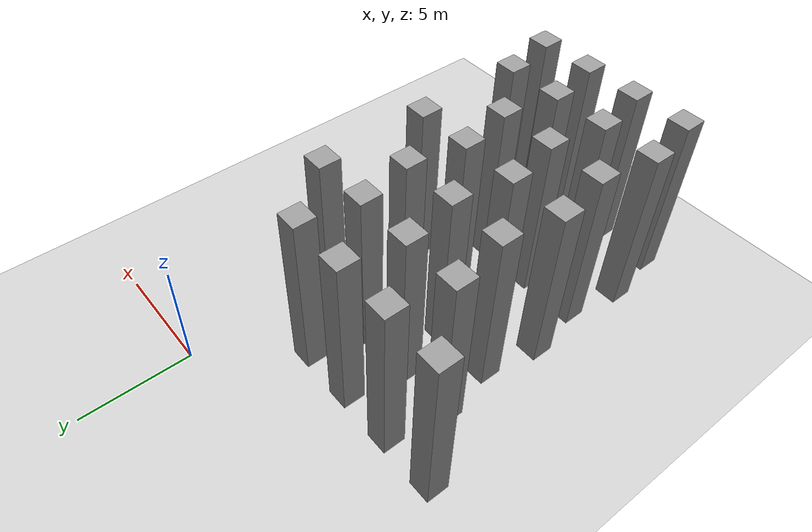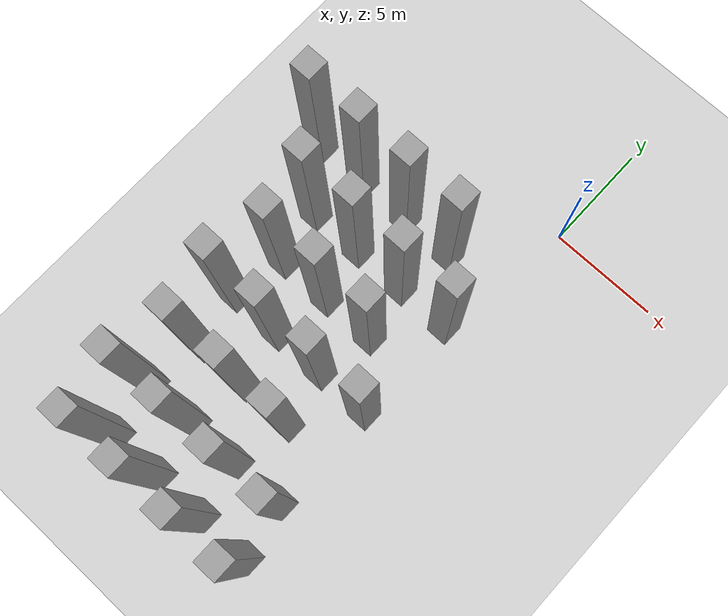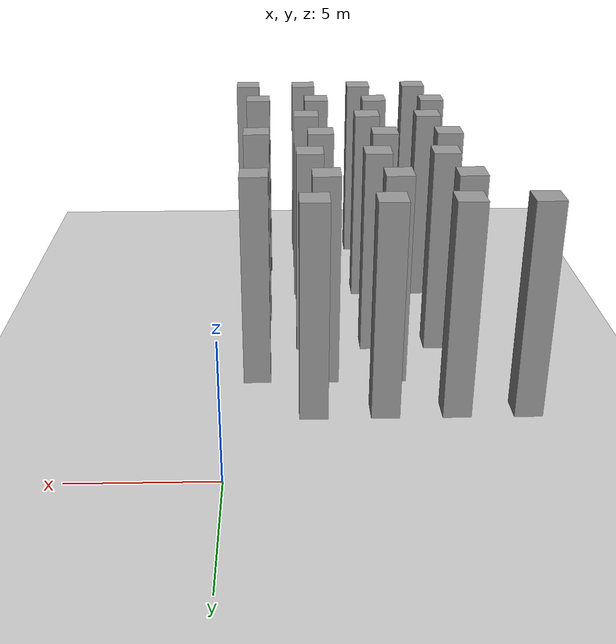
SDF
<sdf version="1.7">
 <world name="default">
  <model name="ground_plane">
   <static>1</static>
   <link name="link">
    <collision name="collision">
     <geometry><plane><normal>0 0 1</normal><size>100 100</size></plane></geometry>
     <surface>
      <contact><collide_bitmask>65535</collide_bitmask></contact>
      <friction><ode><mu>100</mu><mu2>50</mu2></ode></friction>
     </surface>
    </collision>
    <visual name="visual">
     <cast_shadows>0</cast_shadows>
     <geometry><plane><normal>0 0 1</normal><size>100 100</size></plane></geometry>
     <material>
      <script><uri>file://media/materials/scripts/gazebo.material</uri><name>Gazebo/Grey</name></script>
     </material>
    </visual>
   </link>
  </model>
  <model name="unit_box_static5">
   <link name="link">
    <inertial>
     <mass>1</mass>
     <inertia>
      <ixx>0.166667</ixx>
      <ixy>0</ixy>
      <ixz>0</ixz>
      <iyy>0.166667</iyy>
      <iyz>0</iyz>
      <izz>0.166667</izz>
     </inertia>
    </inertial>
    <visual name="visual">
     <geometry><box><size>1 1 8</size></box></geometry>
     <material>
      <script><name>Gazebo/Grey</name><uri>file://media/materials/scripts/gazebo.material</uri></script>
      <shader type="pixel"/>
     </material>
    </visual>
    <collision name="collision">
     <geometry><box><size>1 1 8</size></box></geometry>
     <surface>
      <friction>
       <ode><mu>1</mu><mu2>1</mu2><fdir1>0 0 0</fdir1><slip1>0</slip1><slip2>0</slip2></ode>
       <torsional>
        <coefficient>1</coefficient>
        <patch_radius>0</patch_radius>
        <surface_radius>0</surface_radius>
        <use_patch_radius>1</use_patch_radius>
        <ode><slip>0</slip></ode>
       </torsional>
      </friction>
      <bounce><restitution_coefficient>0</restitution_coefficient><threshold>1e+06</threshold></bounce>
      <contact>
       <collide_without_contact>0</collide_without_contact>
       <collide_without_contact_bitmask>1</collide_without_contact_bitmask>
       <collide_bitmask>1</collide_bitmask>
       <ode>
        <soft_cfm>0</soft_cfm>
        <soft_erp>0.2</soft_erp>
        <kp>1e+13</kp>
        <kd>1</kd>
        <max_vel>0.01</max_vel>
        <min_depth>0</min_depth>
       </ode>
       <bullet>
        <split_impulse>1</split_impulse>
        <split_impulse_penetration_threshold>-0.01</split_impulse_penetration_threshold>
        <soft_cfm>0</soft_cfm>
        <soft_erp>0.2</soft_erp>
        <kp>1e+13</kp>
        <kd>1</kd>
       </bullet>
      </contact>
     </surface>
    </collision>
   </link>
   <static>1</static>
   <pose>-8 -19 4 0 -0 0</pose>
  </model>
  <model name="unit_box_static6">
   <link name="link">
    <inertial>
     <mass>1</mass>
     <inertia>
      <ixx>0.166667</ixx>
      <ixy>0</ixy>
      <ixz>0</ixz>
      <iyy>0.166667</iyy>
      <iyz>0</iyz>
      <izz>0.166667</izz>
     </inertia>
    </inertial>
    <visual name="visual">
     <geometry><box><size>1 1 8</size></box></geometry>
     <material>
      <script><name>Gazebo/Grey</name><uri>file://media/materials/scripts/gazebo.material</uri></script>
      <shader type="pixel"/>
     </material>
    </visual>
    <collision name="collision">
     <geometry><box><size>1 1 8</size></box></geometry>
     <surface>
      <friction>
       <ode><mu>1</mu><mu2>1</mu2><fdir1>0 0 0</fdir1><slip1>0</slip1><slip2>0</slip2></ode>
       <torsional>
        <coefficient>1</coefficient>
        <patch_radius>0</patch_radius>
        <surface_radius>0</surface_radius>
        <use_patch_radius>1</use_patch_radius>
        <ode><slip>0</slip></ode>
       </torsional>
      </friction>
      <bounce><restitution_coefficient>0</restitution_coefficient><threshold>1e+06</threshold></bounce>
      <contact>
       <collide_without_contact>0</collide_without_contact>
       <collide_without_contact_bitmask>1</collide_without_contact_bitmask>
       <collide_bitmask>1</collide_bitmask>
       <ode>
        <soft_cfm>0</soft_cfm>
        <soft_erp>0.2</soft_erp>
        <kp>1e+13</kp>
        <kd>1</kd>
        <max_vel>0.01</max_vel>
        <min_depth>0</min_depth>
       </ode>
       <bullet>
        <split_impulse>1</split_impulse>
        <split_impulse_penetration_threshold>-0.01</split_impulse_penetration_threshold>
        <soft_cfm>0</soft_cfm>
        <soft_erp>0.2</soft_erp>
        <kp>1e+13</kp>
        <kd>1</kd>
       </bullet>
      </contact>
     </surface>
    </collision>
   </link>
   <static>1</static>
   <pose>-5.5 -19 4 0 -0 0</pose>
  </model>
  <model name="unit_box_static7">
   <link name="link">
    <inertial>
     <mass>1</mass>
     <inertia>
      <ixx>0.166667</ixx>
      <ixy>0</ixy>
      <ixz>0</ixz>
      <iyy>0.166667</iyy>
      <iyz>0</iyz>
      <izz>0.166667</izz>
     </inertia>
    </inertial>
    <visual name="visual">
     <geometry><box><size>1 1 8</size></box></geometry>
     <material>
      <script><name>Gazebo/Grey</name><uri>file://media/materials/scripts/gazebo.material</uri></script>
      <shader type="pixel"/>
     </material>
    </visual>
    <collision name="collision">
     <geometry><box><size>1 1 8</size></box></geometry>
     <surface>
      <friction>
       <ode><mu>1</mu><mu2>1</mu2><fdir1>0 0 0</fdir1><slip1>0</slip1><slip2>0</slip2></ode>
       <torsional>
        <coefficient>1</coefficient>
        <patch_radius>0</patch_radius>
        <surface_radius>0</surface_radius>
        <use_patch_radius>1</use_patch_radius>
        <ode><slip>0</slip></ode>
       </torsional>
      </friction>
      <bounce><restitution_coefficient>0</restitution_coefficient><threshold>1e+06</threshold></bounce>
      <contact>
       <collide_without_contact>0</collide_without_contact>
       <collide_without_contact_bitmask>1</collide_without_contact_bitmask>
       <collide_bitmask>1</collide_bitmask>
       <ode>
        <soft_cfm>0</soft_cfm>
        <soft_erp>0.2</soft_erp>
        <kp>1e+13</kp>
        <kd>1</kd>
        <max_vel>0.01</max_vel>
        <min_depth>0</min_depth>
       </ode>
       <bullet>
        <split_impulse>1</split_impulse>
        <split_impulse_penetration_threshold>-0.01</split_impulse_penetration_threshold>
        <soft_cfm>0</soft_cfm>
        <soft_erp>0.2</soft_erp>
        <kp>1e+13</kp>
        <kd>1</kd>
       </bullet>
      </contact>
     </surface>
    </collision>
   </link>
   <static>1</static>
   <pose>-3 -19 4 0 -0 0</pose>
  </model>
  <model name="unit_box_static8">
   <link name="link">
    <inertial>
     <mass>1</mass>
     <inertia>
      <ixx>0.166667</ixx>
      <ixy>0</ixy>
      <ixz>0</ixz>
      <iyy>0.166667</iyy>
      <iyz>0</iyz>
      <izz>0.166667</izz>
     </inertia>
    </inertial>
    <visual name="visual">
     <geometry><box><size>1 1 8</size></box></geometry>
     <material>
      <script><name>Gazebo/Grey</name><uri>file://media/materials/scripts/gazebo.material</uri></script>
      <shader type="pixel"/>
     </material>
    </visual>
    <collision name="collision">
     <geometry><box><size>1 1 8</size></box></geometry>
     <surface>
      <friction>
       <ode><mu>1</mu><mu2>1</mu2><fdir1>0 0 0</fdir1><slip1>0</slip1><slip2>0</slip2></ode>
       <torsional>
        <coefficient>1</coefficient>
        <patch_radius>0</patch_radius>
        <surface_radius>0</surface_radius>
        <use_patch_radius>1</use_patch_radius>
        <ode><slip>0</slip></ode>
       </torsional>
      </friction>
      <bounce><restitution_coefficient>0</restitution_coefficient><threshold>1e+06</threshold></bounce>
      <contact>
       <collide_without_contact>0</collide_without_contact>
       <collide_without_contact_bitmask>1</collide_without_contact_bitmask>
       <collide_bitmask>1</collide_bitmask>
       <ode>
        <soft_cfm>0</soft_cfm>
        <soft_erp>0.2</soft_erp>
        <kp>1e+13</kp>
        <kd>1</kd>
        <max_vel>0.01</max_vel>
        <min_depth>0</min_depth>
       </ode>
       <bullet>
        <split_impulse>1</split_impulse>
        <split_impulse_penetration_threshold>-0.01</split_impulse_penetration_threshold>
        <soft_cfm>0</soft_cfm>
        <soft_erp>0.2</soft_erp>
        <kp>1e+13</kp>
        <kd>1</kd>
       </bullet>
      </contact>
     </surface>
    </collision>
   </link>
   <static>1</static>
   <pose>-0.5 -19 4 0 -0 0</pose>
  </model>
  <model name="unit_box_static19">
   <link name="link">
    <inertial>
     <mass>1</mass>
     <inertia>
      <ixx>0.166667</ixx>
      <ixy>0</ixy>
      <ixz>0</ixz>
      <iyy>0.166667</iyy>
      <iyz>0</iyz>
      <izz>0.166667</izz>
     </inertia>
    </inertial>
    <visual name="visual">
     <geometry><box><size>1 1 8</size></box></geometry>
     <material>
      <script><name>Gazebo/Grey</name><uri>file://media/materials/scripts/gazebo.material</uri></script>
      <shader type="pixel"/>
     </material>
    </visual>
    <collision name="collision">
     <geometry><box><size>1 1 8</size></box></geometry>
     <surface>
      <friction>
       <ode><mu>1</mu><mu2>1</mu2><fdir1>0 0 0</fdir1><slip1>0</slip1><slip2>0</slip2></ode>
       <torsional>
        <coefficient>1</coefficient>
        <patch_radius>0</patch_radius>
        <surface_radius>0</surface_radius>
        <use_patch_radius>1</use_patch_radius>
        <ode><slip>0</slip></ode>
       </torsional>
      </friction>
      <bounce><restitution_coefficient>0</restitution_coefficient><threshold>1e+06</threshold></bounce>
      <contact>
       <collide_without_contact>0</collide_without_contact>
       <collide_without_contact_bitmask>1</collide_without_contact_bitmask>
       <collide_bitmask>1</collide_bitmask>
       <ode>
        <soft_cfm>0</soft_cfm>
        <soft_erp>0.2</soft_erp>
        <kp>1e+13</kp>
        <kd>1</kd>
        <max_vel>0.01</max_vel>
        <min_depth>0</min_depth>
       </ode>
       <bullet>
        <split_impulse>1</split_impulse>
        <split_impulse_penetration_threshold>-0.01</split_impulse_penetration_threshold>
        <soft_cfm>0</soft_cfm>
        <soft_erp>0.2</soft_erp>
        <kp>1e+13</kp>
        <kd>1</kd>
       </bullet>
      </contact>
     </surface>
    </collision>
   </link>
   <static>1</static>
   <pose>-8.5 -16.5 4 0 -0 0</pose>
  </model>
  <model name="unit_box_static20">
   <link name="link">
    <inertial>
     <mass>1</mass>
     <inertia>
      <ixx>0.166667</ixx>
      <ixy>0</ixy>
      <ixz>0</ixz>
      <iyy>0.166667</iyy>
      <iyz>0</iyz>
      <izz>0.166667</izz>
     </inertia>
    </inertial>
    <visual name="visual">
     <geometry><box><size>1 1 8</size></box></geometry>
     <material>
      <script><name>Gazebo/Grey</name><uri>file://media/materials/scripts/gazebo.material</uri></script>
      <shader type="pixel"/>
     </material>
    </visual>
    <collision name="collision">
     <geometry><box><size>1 1 8</size></box></geometry>
     <surface>
      <friction>
       <ode><mu>1</mu><mu2>1</mu2><fdir1>0 0 0</fdir1><slip1>0</slip1><slip2>0</slip2></ode>
       <torsional>
        <coefficient>1</coefficient>
        <patch_radius>0</patch_radius>
        <surface_radius>0</surface_radius>
        <use_patch_radius>1</use_patch_radius>
        <ode><slip>0</slip></ode>
       </torsional>
      </friction>
      <bounce><restitution_coefficient>0</restitution_coefficient><threshold>1e+06</threshold></bounce>
      <contact>
       <collide_without_contact>0</collide_without_contact>
       <collide_without_contact_bitmask>1</collide_without_contact_bitmask>
       <collide_bitmask>1</collide_bitmask>
       <ode>
        <soft_cfm>0</soft_cfm>
        <soft_erp>0.2</soft_erp>
        <kp>1e+13</kp>
        <kd>1</kd>
        <max_vel>0.01</max_vel>
        <min_depth>0</min_depth>
       </ode>
       <bullet>
        <split_impulse>1</split_impulse>
        <split_impulse_penetration_threshold>-0.01</split_impulse_penetration_threshold>
        <soft_cfm>0</soft_cfm>
        <soft_erp>0.2</soft_erp>
        <kp>1e+13</kp>
        <kd>1</kd>
       </bullet>
      </contact>
     </surface>
    </collision>
   </link>
   <static>1</static>
   <pose>-6 -16.5 4 0 -0 0</pose>
  </model>
  <model name="unit_box_static21">
   <link name="link">
    <inertial>
     <mass>1</mass>
     <inertia>
      <ixx>0.166667</ixx>
      <ixy>0</ixy>
      <ixz>0</ixz>
      <iyy>0.166667</iyy>
      <iyz>0</iyz>
      <izz>0.166667</izz>
     </inertia>
    </inertial>
    <visual name="visual">
     <geometry><box><size>1 1 8</size></box></geometry>
     <material>
      <script><name>Gazebo/Grey</name><uri>file://media/materials/scripts/gazebo.material</uri></script>
      <shader type="pixel"/>
     </material>
    </visual>
    <collision name="collision">
     <geometry><box><size>1 1 8</size></box></geometry>
     <surface>
      <friction>
       <ode><mu>1</mu><mu2>1</mu2><fdir1>0 0 0</fdir1><slip1>0</slip1><slip2>0</slip2></ode>
       <torsional>
        <coefficient>1</coefficient>
        <patch_radius>0</patch_radius>
        <surface_radius>0</surface_radius>
        <use_patch_radius>1</use_patch_radius>
        <ode><slip>0</slip></ode>
       </torsional>
      </friction>
      <bounce><restitution_coefficient>0</restitution_coefficient><threshold>1e+06</threshold></bounce>
      <contact>
       <collide_without_contact>0</collide_without_contact>
       <collide_without_contact_bitmask>1</collide_without_contact_bitmask>
       <collide_bitmask>1</collide_bitmask>
       <ode>
        <soft_cfm>0</soft_cfm>
        <soft_erp>0.2</soft_erp>
        <kp>1e+13</kp>
        <kd>1</kd>
        <max_vel>0.01</max_vel>
        <min_depth>0</min_depth>
       </ode>
       <bullet>
        <split_impulse>1</split_impulse>
        <split_impulse_penetration_threshold>-0.01</split_impulse_penetration_threshold>
        <soft_cfm>0</soft_cfm>
        <soft_erp>0.2</soft_erp>
        <kp>1e+13</kp>
        <kd>1</kd>
       </bullet>
      </contact>
     </surface>
    </collision>
   </link>
   <static>1</static>
   <pose>-3.5 -16.5 4 0 -0 0</pose>
  </model>
  <model name="unit_box_static22">
   <link name="link">
    <inertial>
     <mass>1</mass>
     <inertia>
      <ixx>0.166667</ixx>
      <ixy>0</ixy>
      <ixz>0</ixz>
      <iyy>0.166667</iyy>
      <iyz>0</iyz>
      <izz>0.166667</izz>
     </inertia>
    </inertial>
    <visual name="visual">
     <geometry><box><size>1 1 8</size></box></geometry>
     <material>
      <script><name>Gazebo/Grey</name><uri>file://media/materials/scripts/gazebo.material</uri></script>
      <shader type="pixel"/>
     </material>
    </visual>
    <collision name="collision">
     <geometry><box><size>1 1 8</size></box></geometry>
     <surface>
      <friction>
       <ode><mu>1</mu><mu2>1</mu2><fdir1>0 0 0</fdir1><slip1>0</slip1><slip2>0</slip2></ode>
       <torsional>
        <coefficient>1</coefficient>
        <patch_radius>0</patch_radius>
        <surface_radius>0</surface_radius>
        <use_patch_radius>1</use_patch_radius>
        <ode><slip>0</slip></ode>
       </torsional>
      </friction>
      <bounce><restitution_coefficient>0</restitution_coefficient><threshold>1e+06</threshold></bounce>
      <contact>
       <collide_without_contact>0</collide_without_contact>
       <collide_without_contact_bitmask>1</collide_without_contact_bitmask>
       <collide_bitmask>1</collide_bitmask>
       <ode>
        <soft_cfm>0</soft_cfm>
        <soft_erp>0.2</soft_erp>
        <kp>1e+13</kp>
        <kd>1</kd>
        <max_vel>0.01</max_vel>
        <min_depth>0</min_depth>
       </ode>
       <bullet>
        <split_impulse>1</split_impulse>
        <split_impulse_penetration_threshold>-0.01</split_impulse_penetration_threshold>
        <soft_cfm>0</soft_cfm>
        <soft_erp>0.2</soft_erp>
        <kp>1e+13</kp>
        <kd>1</kd>
       </bullet>
      </contact>
     </surface>
    </collision>
   </link>
   <static>1</static>
   <pose>-1 -16.5 4 0 -0 0</pose>
  </model>
  <model name="unit_box_static34">
   <link name="link">
    <inertial>
     <mass>1</mass>
     <inertia>
      <ixx>0.166667</ixx>
      <ixy>0</ixy>
      <ixz>0</ixz>
      <iyy>0.166667</iyy>
      <iyz>0</iyz>
      <izz>0.166667</izz>
     </inertia>
    </inertial>
    <visual name="visual">
     <geometry><box><size>1 1 8</size></box></geometry>
     <material>
      <script><name>Gazebo/Grey</name><uri>file://media/materials/scripts/gazebo.material</uri></script>
      <shader type="pixel"/>
     </material>
    </visual>
    <collision name="collision">
     <geometry><box><size>1 1 8</size></box></geometry>
     <surface>
      <friction>
       <ode><mu>1</mu><mu2>1</mu2><fdir1>0 0 0</fdir1><slip1>0</slip1><slip2>0</slip2></ode>
       <torsional>
        <coefficient>1</coefficient>
        <patch_radius>0</patch_radius>
        <surface_radius>0</surface_radius>
        <use_patch_radius>1</use_patch_radius>
        <ode><slip>0</slip></ode>
       </torsional>
      </friction>
      <bounce><restitution_coefficient>0</restitution_coefficient><threshold>1e+06</threshold></bounce>
      <contact>
       <collide_without_contact>0</collide_without_contact>
       <collide_without_contact_bitmask>1</collide_without_contact_bitmask>
       <collide_bitmask>1</collide_bitmask>
       <ode>
        <soft_cfm>0</soft_cfm>
        <soft_erp>0.2</soft_erp>
        <kp>1e+13</kp>
        <kd>1</kd>
        <max_vel>0.01</max_vel>
        <min_depth>0</min_depth>
       </ode>
       <bullet>
        <split_impulse>1</split_impulse>
        <split_impulse_penetration_threshold>-0.01</split_impulse_penetration_threshold>
        <soft_cfm>0</soft_cfm>
        <soft_erp>0.2</soft_erp>
        <kp>1e+13</kp>
        <kd>1</kd>
       </bullet>
      </contact>
     </surface>
    </collision>
   </link>
   <static>1</static>
   <pose>-8 -14 4 0 -0 0</pose>
  </model>
  <model name="unit_box_static35">
   <link name="link">
    <inertial>
     <mass>1</mass>
     <inertia>
      <ixx>0.166667</ixx>
      <ixy>0</ixy>
      <ixz>0</ixz>
      <iyy>0.166667</iyy>
      <iyz>0</iyz>
      <izz>0.166667</izz>
     </inertia>
    </inertial>
    <visual name="visual">
     <geometry><box><size>1 1 8</size></box></geometry>
     <material>
      <script><name>Gazebo/Grey</name><uri>file://media/materials/scripts/gazebo.material</uri></script>
      <shader type="pixel"/>
     </material>
    </visual>
    <collision name="collision">
     <geometry><box><size>1 1 8</size></box></geometry>
     <surface>
      <friction>
       <ode><mu>1</mu><mu2>1</mu2><fdir1>0 0 0</fdir1><slip1>0</slip1><slip2>0</slip2></ode>
       <torsional>
        <coefficient>1</coefficient>
        <patch_radius>0</patch_radius>
        <surface_radius>0</surface_radius>
        <use_patch_radius>1</use_patch_radius>
        <ode><slip>0</slip></ode>
       </torsional>
      </friction>
      <bounce><restitution_coefficient>0</restitution_coefficient><threshold>1e+06</threshold></bounce>
      <contact>
       <collide_without_contact>0</collide_without_contact>
       <collide_without_contact_bitmask>1</collide_without_contact_bitmask>
       <collide_bitmask>1</collide_bitmask>
       <ode>
        <soft_cfm>0</soft_cfm>
        <soft_erp>0.2</soft_erp>
        <kp>1e+13</kp>
        <kd>1</kd>
        <max_vel>0.01</max_vel>
        <min_depth>0</min_depth>
       </ode>
       <bullet>
        <split_impulse>1</split_impulse>
        <split_impulse_penetration_threshold>-0.01</split_impulse_penetration_threshold>
        <soft_cfm>0</soft_cfm>
        <soft_erp>0.2</soft_erp>
        <kp>1e+13</kp>
        <kd>1</kd>
       </bullet>
      </contact>
     </surface>
    </collision>
   </link>
   <static>1</static>
   <pose>-5.5 -14 4 0 -0 0</pose>
  </model>
  <model name="unit_box_static36">
   <link name="link">
    <inertial>
     <mass>1</mass>
     <inertia>
      <ixx>0.166667</ixx>
      <ixy>0</ixy>
      <ixz>0</ixz>
      <iyy>0.166667</iyy>
      <iyz>0</iyz>
      <izz>0.166667</izz>
     </inertia>
    </inertial>
    <visual name="visual">
     <geometry><box><size>1 1 8</size></box></geometry>
     <material>
      <script><name>Gazebo/Grey</name><uri>file://media/materials/scripts/gazebo.material</uri></script>
      <shader type="pixel"/>
     </material>
    </visual>
    <collision name="collision">
     <geometry><box><size>1 1 8</size></box></geometry>
     <surface>
      <friction>
       <ode><mu>1</mu><mu2>1</mu2><fdir1>0 0 0</fdir1><slip1>0</slip1><slip2>0</slip2></ode>
       <torsional>
        <coefficient>1</coefficient>
        <patch_radius>0</patch_radius>
        <surface_radius>0</surface_radius>
        <use_patch_radius>1</use_patch_radius>
        <ode><slip>0</slip></ode>
       </torsional>
      </friction>
      <bounce><restitution_coefficient>0</restitution_coefficient><threshold>1e+06</threshold></bounce>
      <contact>
       <collide_without_contact>0</collide_without_contact>
       <collide_without_contact_bitmask>1</collide_without_contact_bitmask>
       <collide_bitmask>1</collide_bitmask>
       <ode>
        <soft_cfm>0</soft_cfm>
        <soft_erp>0.2</soft_erp>
        <kp>1e+13</kp>
        <kd>1</kd>
        <max_vel>0.01</max_vel>
        <min_depth>0</min_depth>
       </ode>
       <bullet>
        <split_impulse>1</split_impulse>
        <split_impulse_penetration_threshold>-0.01</split_impulse_penetration_threshold>
        <soft_cfm>0</soft_cfm>
        <soft_erp>0.2</soft_erp>
        <kp>1e+13</kp>
        <kd>1</kd>
       </bullet>
      </contact>
     </surface>
    </collision>
   </link>
   <static>1</static>
   <pose>-3 -14 4 0 -0 0</pose>
  </model>
  <model name="unit_box_static48">
   <link name="link">
    <inertial>
     <mass>1</mass>
     <inertia>
      <ixx>0.166667</ixx>
      <ixy>0</ixy>
      <ixz>0</ixz>
      <iyy>0.166667</iyy>
      <iyz>0</iyz>
      <izz>0.166667</izz>
     </inertia>
    </inertial>
    <visual name="visual">
     <geometry><box><size>1 1 8</size></box></geometry>
     <material>
      <script><name>Gazebo/Grey</name><uri>file://media/materials/scripts/gazebo.material</uri></script>
      <shader type="pixel"/>
     </material>
    </visual>
    <collision name="collision">
     <geometry><box><size>1 1 8</size></box></geometry>
     <surface>
      <friction>
       <ode><mu>1</mu><mu2>1</mu2><fdir1>0 0 0</fdir1><slip1>0</slip1><slip2>0</slip2></ode>
       <torsional>
        <coefficient>1</coefficient>
        <patch_radius>0</patch_radius>
        <surface_radius>0</surface_radius>
        <use_patch_radius>1</use_patch_radius>
        <ode><slip>0</slip></ode>
       </torsional>
      </friction>
      <bounce><restitution_coefficient>0</restitution_coefficient><threshold>1e+06</threshold></bounce>
      <contact>
       <collide_without_contact>0</collide_without_contact>
       <collide_without_contact_bitmask>1</collide_without_contact_bitmask>
       <collide_bitmask>1</collide_bitmask>
       <ode>
        <soft_cfm>0</soft_cfm>
        <soft_erp>0.2</soft_erp>
        <kp>1e+13</kp>
        <kd>1</kd>
        <max_vel>0.01</max_vel>
        <min_depth>0</min_depth>
       </ode>
       <bullet>
        <split_impulse>1</split_impulse>
        <split_impulse_penetration_threshold>-0.01</split_impulse_penetration_threshold>
        <soft_cfm>0</soft_cfm>
        <soft_erp>0.2</soft_erp>
        <kp>1e+13</kp>
        <kd>1</kd>
       </bullet>
      </contact>
     </surface>
    </collision>
   </link>
   <static>1</static>
   <pose>-8.5 -11.5 4 0 -0 0</pose>
  </model>
  <model name="unit_box_static49">
   <link name="link">
    <inertial>
     <mass>1</mass>
     <inertia>
      <ixx>0.166667</ixx>
      <ixy>0</ixy>
      <ixz>0</ixz>
      <iyy>0.166667</iyy>
      <iyz>0</iyz>
      <izz>0.166667</izz>
     </inertia>
    </inertial>
    <visual name="visual">
     <geometry><box><size>1 1 8</size></box></geometry>
     <material>
      <script><name>Gazebo/Grey</name><uri>file://media/materials/scripts/gazebo.material</uri></script>
      <shader type="pixel"/>
     </material>
    </visual>
    <collision name="collision">
     <geometry><box><size>1 1 8</size></box></geometry>
     <surface>
      <friction>
       <ode><mu>1</mu><mu2>1</mu2><fdir1>0 0 0</fdir1><slip1>0</slip1><slip2>0</slip2></ode>
       <torsional>
        <coefficient>1</coefficient>
        <patch_radius>0</patch_radius>
        <surface_radius>0</surface_radius>
        <use_patch_radius>1</use_patch_radius>
        <ode><slip>0</slip></ode>
       </torsional>
      </friction>
      <bounce><restitution_coefficient>0</restitution_coefficient><threshold>1e+06</threshold></bounce>
      <contact>
       <collide_without_contact>0</collide_without_contact>
       <collide_without_contact_bitmask>1</collide_without_contact_bitmask>
       <collide_bitmask>1</collide_bitmask>
       <ode>
        <soft_cfm>0</soft_cfm>
        <soft_erp>0.2</soft_erp>
        <kp>1e+13</kp>
        <kd>1</kd>
        <max_vel>0.01</max_vel>
        <min_depth>0</min_depth>
       </ode>
       <bullet>
        <split_impulse>1</split_impulse>
        <split_impulse_penetration_threshold>-0.01</split_impulse_penetration_threshold>
        <soft_cfm>0</soft_cfm>
        <soft_erp>0.2</soft_erp>
        <kp>1e+13</kp>
        <kd>1</kd>
       </bullet>
      </contact>
     </surface>
    </collision>
   </link>
   <static>1</static>
   <pose>-6 -11.5 4 0 -0 0</pose>
  </model>
  <model name="unit_box_static50">
   <link name="link">
    <inertial>
     <mass>1</mass>
     <inertia>
      <ixx>0.166667</ixx>
      <ixy>0</ixy>
      <ixz>0</ixz>
      <iyy>0.166667</iyy>
      <iyz>0</iyz>
      <izz>0.166667</izz>
     </inertia>
    </inertial>
    <visual name="visual">
     <geometry><box><size>1 1 8</size></box></geometry>
     <material>
      <script><name>Gazebo/Grey</name><uri>file://media/materials/scripts/gazebo.material</uri></script>
      <shader type="pixel"/>
     </material>
    </visual>
    <collision name="collision">
     <geometry><box><size>1 1 8</size></box></geometry>
     <surface>
      <friction>
       <ode><mu>1</mu><mu2>1</mu2><fdir1>0 0 0</fdir1><slip1>0</slip1><slip2>0</slip2></ode>
       <torsional>
        <coefficient>1</coefficient>
        <patch_radius>0</patch_radius>
        <surface_radius>0</surface_radius>
        <use_patch_radius>1</use_patch_radius>
        <ode><slip>0</slip></ode>
       </torsional>
      </friction>
      <bounce><restitution_coefficient>0</restitution_coefficient><threshold>1e+06</threshold></bounce>
      <contact>
       <collide_without_contact>0</collide_without_contact>
       <collide_without_contact_bitmask>1</collide_without_contact_bitmask>
       <collide_bitmask>1</collide_bitmask>
       <ode>
        <soft_cfm>0</soft_cfm>
        <soft_erp>0.2</soft_erp>
        <kp>1e+13</kp>
        <kd>1</kd>
        <max_vel>0.01</max_vel>
        <min_depth>0</min_depth>
       </ode>
       <bullet>
        <split_impulse>1</split_impulse>
        <split_impulse_penetration_threshold>-0.01</split_impulse_penetration_threshold>
        <soft_cfm>0</soft_cfm>
        <soft_erp>0.2</soft_erp>
        <kp>1e+13</kp>
        <kd>1</kd>
       </bullet>
      </contact>
     </surface>
    </collision>
   </link>
   <static>1</static>
   <pose>-3.5 -11.5 4 0 -0 0</pose>
  </model>
  <model name="unit_box_static51">
   <link name="link">
    <inertial>
     <mass>1</mass>
     <inertia>
      <ixx>0.166667</ixx>
      <ixy>0</ixy>
      <ixz>0</ixz>
      <iyy>0.166667</iyy>
      <iyz>0</iyz>
      <izz>0.166667</izz>
     </inertia>
    </inertial>
    <visual name="visual">
     <geometry><box><size>1 1 8</size></box></geometry>
     <material>
      <script><name>Gazebo/Grey</name><uri>file://media/materials/scripts/gazebo.material</uri></script>
      <shader type="pixel"/>
     </material>
    </visual>
    <collision name="collision">
     <geometry><box><size>1 1 8</size></box></geometry>
     <surface>
      <friction>
       <ode><mu>1</mu><mu2>1</mu2><fdir1>0 0 0</fdir1><slip1>0</slip1><slip2>0</slip2></ode>
       <torsional>
        <coefficient>1</coefficient>
        <patch_radius>0</patch_radius>
        <surface_radius>0</surface_radius>
        <use_patch_radius>1</use_patch_radius>
        <ode><slip>0</slip></ode>
       </torsional>
      </friction>
      <bounce><restitution_coefficient>0</restitution_coefficient><threshold>1e+06</threshold></bounce>
      <contact>
       <collide_without_contact>0</collide_without_contact>
       <collide_without_contact_bitmask>1</collide_without_contact_bitmask>
       <collide_bitmask>1</collide_bitmask>
       <ode>
        <soft_cfm>0</soft_cfm>
        <soft_erp>0.2</soft_erp>
        <kp>1e+13</kp>
        <kd>1</kd>
        <max_vel>0.01</max_vel>
        <min_depth>0</min_depth>
       </ode>
       <bullet>
        <split_impulse>1</split_impulse>
        <split_impulse_penetration_threshold>-0.01</split_impulse_penetration_threshold>
        <soft_cfm>0</soft_cfm>
        <soft_erp>0.2</soft_erp>
        <kp>1e+13</kp>
        <kd>1</kd>
       </bullet>
      </contact>
     </surface>
    </collision>
   </link>
   <static>1</static>
   <pose>-1 -11.5 4 0 -0 0</pose>
  </model>
  <model name="unit_box_static63">
   <link name="link">
    <inertial>
     <mass>1</mass>
     <inertia>
      <ixx>0.166667</ixx>
      <ixy>0</ixy>
      <ixz>0</ixz>
      <iyy>0.166667</iyy>
      <iyz>0</iyz>
      <izz>0.166667</izz>
     </inertia>
    </inertial>
    <visual name="visual">
     <geometry><box><size>1 1 8</size></box></geometry>
     <material>
      <script><name>Gazebo/Grey</name><uri>file://media/materials/scripts/gazebo.material</uri></script>
      <shader type="pixel"/>
     </material>
    </visual>
    <collision name="collision">
     <geometry><box><size>1 1 8</size></box></geometry>
     <surface>
      <friction>
       <ode><mu>1</mu><mu2>1</mu2><fdir1>0 0 0</fdir1><slip1>0</slip1><slip2>0</slip2></ode>
       <torsional>
        <coefficient>1</coefficient>
        <patch_radius>0</patch_radius>
        <surface_radius>0</surface_radius>
        <use_patch_radius>1</use_patch_radius>
        <ode><slip>0</slip></ode>
       </torsional>
      </friction>
      <bounce><restitution_coefficient>0</restitution_coefficient><threshold>1e+06</threshold></bounce>
      <contact>
       <collide_without_contact>0</collide_without_contact>
       <collide_without_contact_bitmask>1</collide_without_contact_bitmask>
       <collide_bitmask>1</collide_bitmask>
       <ode>
        <soft_cfm>0</soft_cfm>
        <soft_erp>0.2</soft_erp>
        <kp>1e+13</kp>
        <kd>1</kd>
        <max_vel>0.01</max_vel>
        <min_depth>0</min_depth>
       </ode>
       <bullet>
        <split_impulse>1</split_impulse>
        <split_impulse_penetration_threshold>-0.01</split_impulse_penetration_threshold>
        <soft_cfm>0</soft_cfm>
        <soft_erp>0.2</soft_erp>
        <kp>1e+13</kp>
        <kd>1</kd>
       </bullet>
      </contact>
     </surface>
    </collision>
   </link>
   <static>1</static>
   <pose>-8 -9 4 0 -0 0</pose>
  </model>
  <model name="unit_box_static64">
   <link name="link">
    <inertial>
     <mass>1</mass>
     <inertia>
      <ixx>0.166667</ixx>
      <ixy>0</ixy>
      <ixz>0</ixz>
      <iyy>0.166667</iyy>
      <iyz>0</iyz>
      <izz>0.166667</izz>
     </inertia>
    </inertial>
    <visual name="visual">
     <geometry><box><size>1 1 8</size></box></geometry>
     <material>
      <script><name>Gazebo/Grey</name><uri>file://media/materials/scripts/gazebo.material</uri></script>
      <shader type="pixel"/>
     </material>
    </visual>
    <collision name="collision">
     <geometry><box><size>1 1 8</size></box></geometry>
     <surface>
      <friction>
       <ode><mu>1</mu><mu2>1</mu2><fdir1>0 0 0</fdir1><slip1>0</slip1><slip2>0</slip2></ode>
       <torsional>
        <coefficient>1</coefficient>
        <patch_radius>0</patch_radius>
        <surface_radius>0</surface_radius>
        <use_patch_radius>1</use_patch_radius>
        <ode><slip>0</slip></ode>
       </torsional>
      </friction>
      <bounce><restitution_coefficient>0</restitution_coefficient><threshold>1e+06</threshold></bounce>
      <contact>
       <collide_without_contact>0</collide_without_contact>
       <collide_without_contact_bitmask>1</collide_without_contact_bitmask>
       <collide_bitmask>1</collide_bitmask>
       <ode>
        <soft_cfm>0</soft_cfm>
        <soft_erp>0.2</soft_erp>
        <kp>1e+13</kp>
        <kd>1</kd>
        <max_vel>0.01</max_vel>
        <min_depth>0</min_depth>
       </ode>
       <bullet>
        <split_impulse>1</split_impulse>
        <split_impulse_penetration_threshold>-0.01</split_impulse_penetration_threshold>
        <soft_cfm>0</soft_cfm>
        <soft_erp>0.2</soft_erp>
        <kp>1e+13</kp>
        <kd>1</kd>
       </bullet>
      </contact>
     </surface>
    </collision>
   </link>
   <static>1</static>
   <pose>-5.5 -9 4 0 -0 0</pose>
  </model>
  <model name="unit_box_static65">
   <link name="link">
    <inertial>
     <mass>1</mass>
     <inertia>
      <ixx>0.166667</ixx>
      <ixy>0</ixy>
      <ixz>0</ixz>
      <iyy>0.166667</iyy>
      <iyz>0</iyz>
      <izz>0.166667</izz>
     </inertia>
    </inertial>
    <visual name="visual">
     <geometry><box><size>1 1 8</size></box></geometry>
     <material>
      <script><name>Gazebo/Grey</name><uri>file://media/materials/scripts/gazebo.material</uri></script>
      <shader type="pixel"/>
     </material>
    </visual>
    <collision name="collision">
     <geometry><box><size>1 1 8</size></box></geometry>
     <surface>
      <friction>
       <ode><mu>1</mu><mu2>1</mu2><fdir1>0 0 0</fdir1><slip1>0</slip1><slip2>0</slip2></ode>
       <torsional>
        <coefficient>1</coefficient>
        <patch_radius>0</patch_radius>
        <surface_radius>0</surface_radius>
        <use_patch_radius>1</use_patch_radius>
        <ode><slip>0</slip></ode>
       </torsional>
      </friction>
      <bounce><restitution_coefficient>0</restitution_coefficient><threshold>1e+06</threshold></bounce>
      <contact>
       <collide_without_contact>0</collide_without_contact>
       <collide_without_contact_bitmask>1</collide_without_contact_bitmask>
       <collide_bitmask>1</collide_bitmask>
       <ode>
        <soft_cfm>0</soft_cfm>
        <soft_erp>0.2</soft_erp>
        <kp>1e+13</kp>
        <kd>1</kd>
        <max_vel>0.01</max_vel>
        <min_depth>0</min_depth>
       </ode>
       <bullet>
        <split_impulse>1</split_impulse>
        <split_impulse_penetration_threshold>-0.01</split_impulse_penetration_threshold>
        <soft_cfm>0</soft_cfm>
        <soft_erp>0.2</soft_erp>
        <kp>1e+13</kp>
        <kd>1</kd>
       </bullet>
      </contact>
     </surface>
    </collision>
   </link>
   <static>1</static>
   <pose>-3 -9 4 0 -0 0</pose>
  </model>
  <model name="unit_box_static77">
   <link name="link">
    <inertial>
     <mass>1</mass>
     <inertia>
      <ixx>0.166667</ixx>
      <ixy>0</ixy>
      <ixz>0</ixz>
      <iyy>0.166667</iyy>
      <iyz>0</iyz>
      <izz>0.166667</izz>
     </inertia>
    </inertial>
    <visual name="visual">
     <geometry><box><size>1 1 8</size></box></geometry>
     <material>
      <script><name>Gazebo/Grey</name><uri>file://media/materials/scripts/gazebo.material</uri></script>
      <shader type="pixel"/>
     </material>
    </visual>
    <collision name="collision">
     <geometry><box><size>1 1 8</size></box></geometry>
     <surface>
      <friction>
       <ode><mu>1</mu><mu2>1</mu2><fdir1>0 0 0</fdir1><slip1>0</slip1><slip2>0</slip2></ode>
       <torsional>
        <coefficient>1</coefficient>
        <patch_radius>0</patch_radius>
        <surface_radius>0</surface_radius>
        <use_patch_radius>1</use_patch_radius>
        <ode><slip>0</slip></ode>
       </torsional>
      </friction>
      <bounce><restitution_coefficient>0</restitution_coefficient><threshold>1e+06</threshold></bounce>
      <contact>
       <collide_without_contact>0</collide_without_contact>
       <collide_without_contact_bitmask>1</collide_without_contact_bitmask>
       <collide_bitmask>1</collide_bitmask>
       <ode>
        <soft_cfm>0</soft_cfm>
        <soft_erp>0.2</soft_erp>
        <kp>1e+13</kp>
        <kd>1</kd>
        <max_vel>0.01</max_vel>
        <min_depth>0</min_depth>
       </ode>
       <bullet>
        <split_impulse>1</split_impulse>
        <split_impulse_penetration_threshold>-0.01</split_impulse_penetration_threshold>
        <soft_cfm>0</soft_cfm>
        <soft_erp>0.2</soft_erp>
        <kp>1e+13</kp>
        <kd>1</kd>
       </bullet>
      </contact>
     </surface>
    </collision>
   </link>
   <static>1</static>
   <pose>-8.5 -6.5 4 0 -0 0</pose>
  </model>
  <model name="unit_box_static78">
   <link name="link">
    <inertial>
     <mass>1</mass>
     <inertia>
      <ixx>0.166667</ixx>
      <ixy>0</ixy>
      <ixz>0</ixz>
      <iyy>0.166667</iyy>
      <iyz>0</iyz>
      <izz>0.166667</izz>
     </inertia>
    </inertial>
    <visual name="visual">
     <geometry><box><size>1 1 8</size></box></geometry>
     <material>
      <script><name>Gazebo/Grey</name><uri>file://media/materials/scripts/gazebo.material</uri></script>
      <shader type="pixel"/>
     </material>
    </visual>
    <collision name="collision">
     <geometry><box><size>1 1 8</size></box></geometry>
     <surface>
      <friction>
       <ode><mu>1</mu><mu2>1</mu2><fdir1>0 0 0</fdir1><slip1>0</slip1><slip2>0</slip2></ode>
       <torsional>
        <coefficient>1</coefficient>
        <patch_radius>0</patch_radius>
        <surface_radius>0</surface_radius>
        <use_patch_radius>1</use_patch_radius>
        <ode><slip>0</slip></ode>
       </torsional>
      </friction>
      <bounce><restitution_coefficient>0</restitution_coefficient><threshold>1e+06</threshold></bounce>
      <contact>
       <collide_without_contact>0</collide_without_contact>
       <collide_without_contact_bitmask>1</collide_without_contact_bitmask>
       <collide_bitmask>1</collide_bitmask>
       <ode>
        <soft_cfm>0</soft_cfm>
        <soft_erp>0.2</soft_erp>
        <kp>1e+13</kp>
        <kd>1</kd>
        <max_vel>0.01</max_vel>
        <min_depth>0</min_depth>
       </ode>
       <bullet>
        <split_impulse>1</split_impulse>
        <split_impulse_penetration_threshold>-0.01</split_impulse_penetration_threshold>
        <soft_cfm>0</soft_cfm>
        <soft_erp>0.2</soft_erp>
        <kp>1e+13</kp>
        <kd>1</kd>
       </bullet>
      </contact>
     </surface>
    </collision>
   </link>
   <static>1</static>
   <pose>-6 -6.5 4 0 -0 0</pose>
  </model>
  <model name="unit_box_static79">
   <link name="link">
    <inertial>
     <mass>1</mass>
     <inertia>
      <ixx>0.166667</ixx>
      <ixy>0</ixy>
      <ixz>0</ixz>
      <iyy>0.166667</iyy>
      <iyz>0</iyz>
      <izz>0.166667</izz>
     </inertia>
    </inertial>
    <visual name="visual">
     <geometry><box><size>1 1 8</size></box></geometry>
     <material>
      <script><name>Gazebo/Grey</name><uri>file://media/materials/scripts/gazebo.material</uri></script>
      <shader type="pixel"/>
     </material>
    </visual>
    <collision name="collision">
     <geometry><box><size>1 1 8</size></box></geometry>
     <surface>
      <friction>
       <ode><mu>1</mu><mu2>1</mu2><fdir1>0 0 0</fdir1><slip1>0</slip1><slip2>0</slip2></ode>
       <torsional>
        <coefficient>1</coefficient>
        <patch_radius>0</patch_radius>
        <surface_radius>0</surface_radius>
        <use_patch_radius>1</use_patch_radius>
        <ode><slip>0</slip></ode>
       </torsional>
      </friction>
      <bounce><restitution_coefficient>0</restitution_coefficient><threshold>1e+06</threshold></bounce>
      <contact>
       <collide_without_contact>0</collide_without_contact>
       <collide_without_contact_bitmask>1</collide_without_contact_bitmask>
       <collide_bitmask>1</collide_bitmask>
       <ode>
        <soft_cfm>0</soft_cfm>
        <soft_erp>0.2</soft_erp>
        <kp>1e+13</kp>
        <kd>1</kd>
        <max_vel>0.01</max_vel>
        <min_depth>0</min_depth>
       </ode>
       <bullet>
        <split_impulse>1</split_impulse>
        <split_impulse_penetration_threshold>-0.01</split_impulse_penetration_threshold>
        <soft_cfm>0</soft_cfm>
        <soft_erp>0.2</soft_erp>
        <kp>1e+13</kp>
        <kd>1</kd>
       </bullet>
      </contact>
     </surface>
    </collision>
   </link>
   <static>1</static>
   <pose>-3.5 -6.5 4 0 -0 0</pose>
  </model>
  <model name="unit_box_static80">
   <link name="link">
    <inertial>
     <mass>1</mass>
     <inertia>
      <ixx>0.166667</ixx>
      <ixy>0</ixy>
      <ixz>0</ixz>
      <iyy>0.166667</iyy>
      <iyz>0</iyz>
      <izz>0.166667</izz>
     </inertia>
    </inertial>
    <visual name="visual">
     <geometry><box><size>1 1 8</size></box></geometry>
     <material>
      <script><name>Gazebo/Grey</name><uri>file://media/materials/scripts/gazebo.material</uri></script>
      <shader type="pixel"/>
     </material>
    </visual>
    <collision name="collision">
     <geometry><box><size>1 1 8</size></box></geometry>
     <surface>
      <friction>
       <ode><mu>1</mu><mu2>1</mu2><fdir1>0 0 0</fdir1><slip1>0</slip1><slip2>0</slip2></ode>
       <torsional>
        <coefficient>1</coefficient>
        <patch_radius>0</patch_radius>
        <surface_radius>0</surface_radius>
        <use_patch_radius>1</use_patch_radius>
        <ode><slip>0</slip></ode>
       </torsional>
      </friction>
      <bounce><restitution_coefficient>0</restitution_coefficient><threshold>1e+06</threshold></bounce>
      <contact>
       <collide_without_contact>0</collide_without_contact>
       <collide_without_contact_bitmask>1</collide_without_contact_bitmask>
       <collide_bitmask>1</collide_bitmask>
       <ode>
        <soft_cfm>0</soft_cfm>
        <soft_erp>0.2</soft_erp>
        <kp>1e+13</kp>
        <kd>1</kd>
        <max_vel>0.01</max_vel>
        <min_depth>0</min_depth>
       </ode>
       <bullet>
        <split_impulse>1</split_impulse>
        <split_impulse_penetration_threshold>-0.01</split_impulse_penetration_threshold>
        <soft_cfm>0</soft_cfm>
        <soft_erp>0.2</soft_erp>
        <kp>1e+13</kp>
        <kd>1</kd>
       </bullet>
      </contact>
     </surface>
    </collision>
   </link>
   <static>1</static>
   <pose>-1 -6.5 4 0 -0 0</pose>
  </model>
  <model name="unit_box_static91">
   <link name="link">
    <inertial>
     <mass>1</mass>
     <inertia>
      <ixx>0.166667</ixx>
      <ixy>0</ixy>
      <ixz>0</ixz>
      <iyy>0.166667</iyy>
      <iyz>0</iyz>
      <izz>0.166667</izz>
     </inertia>
    </inertial>
    <visual name="visual">
     <geometry><box><size>1 1 8</size></box></geometry>
     <material>
      <script><name>Gazebo/Grey</name><uri>file://media/materials/scripts/gazebo.material</uri></script>
      <shader type="pixel"/>
     </material>
    </visual>
    <collision name="collision">
     <geometry><box><size>1 1 8</size></box></geometry>
     <surface>
      <friction>
       <ode><mu>1</mu><mu2>1</mu2><fdir1>0 0 0</fdir1><slip1>0</slip1><slip2>0</slip2></ode>
       <torsional>
        <coefficient>1</coefficient>
        <patch_radius>0</patch_radius>
        <surface_radius>0</surface_radius>
        <use_patch_radius>1</use_patch_radius>
        <ode><slip>0</slip></ode>
       </torsional>
      </friction>
      <bounce><restitution_coefficient>0</restitution_coefficient><threshold>1e+06</threshold></bounce>
      <contact>
       <collide_without_contact>0</collide_without_contact>
       <collide_without_contact_bitmask>1</collide_without_contact_bitmask>
       <collide_bitmask>1</collide_bitmask>
       <ode>
        <soft_cfm>0</soft_cfm>
        <soft_erp>0.2</soft_erp>
        <kp>1e+13</kp>
        <kd>1</kd>
        <max_vel>0.01</max_vel>
        <min_depth>0</min_depth>
       </ode>
       <bullet>
        <split_impulse>1</split_impulse>
        <split_impulse_penetration_threshold>-0.01</split_impulse_penetration_threshold>
        <soft_cfm>0</soft_cfm>
        <soft_erp>0.2</soft_erp>
        <kp>1e+13</kp>
        <kd>1</kd>
       </bullet>
      </contact>
     </surface>
    </collision>
   </link>
   <static>1</static>
   <pose>-10.5 -4 4 0 -0 0</pose>
  </model>
  <model name="unit_box_static92">
   <link name="link">
    <inertial>
     <mass>1</mass>
     <inertia>
      <ixx>0.166667</ixx>
      <ixy>0</ixy>
      <ixz>0</ixz>
      <iyy>0.166667</iyy>
      <iyz>0</iyz>
      <izz>0.166667</izz>
     </inertia>
    </inertial>
    <visual name="visual">
     <geometry><box><size>1 1 8</size></box></geometry>
     <material>
      <script><name>Gazebo/Grey</name><uri>file://media/materials/scripts/gazebo.material</uri></script>
      <shader type="pixel"/>
     </material>
    </visual>
    <collision name="collision">
     <geometry><box><size>1 1 8</size></box></geometry>
     <surface>
      <friction>
       <ode><mu>1</mu><mu2>1</mu2><fdir1>0 0 0</fdir1><slip1>0</slip1><slip2>0</slip2></ode>
       <torsional>
        <coefficient>1</coefficient>
        <patch_radius>0</patch_radius>
        <surface_radius>0</surface_radius>
        <use_patch_radius>1</use_patch_radius>
        <ode><slip>0</slip></ode>
       </torsional>
      </friction>
      <bounce><restitution_coefficient>0</restitution_coefficient><threshold>1e+06</threshold></bounce>
      <contact>
       <collide_without_contact>0</collide_without_contact>
       <collide_without_contact_bitmask>1</collide_without_contact_bitmask>
       <collide_bitmask>1</collide_bitmask>
       <ode>
        <soft_cfm>0</soft_cfm>
        <soft_erp>0.2</soft_erp>
        <kp>1e+13</kp>
        <kd>1</kd>
        <max_vel>0.01</max_vel>
        <min_depth>0</min_depth>
       </ode>
       <bullet>
        <split_impulse>1</split_impulse>
        <split_impulse_penetration_threshold>-0.01</split_impulse_penetration_threshold>
        <soft_cfm>0</soft_cfm>
        <soft_erp>0.2</soft_erp>
        <kp>1e+13</kp>
        <kd>1</kd>
       </bullet>
      </contact>
     </surface>
    </collision>
   </link>
   <static>1</static>
   <pose>-8 -4 4 0 -0 0</pose>
  </model>
  <model name="unit_box_static93">
   <link name="link">
    <inertial>
     <mass>1</mass>
     <inertia>
      <ixx>0.166667</ixx>
      <ixy>0</ixy>
      <ixz>0</ixz>
      <iyy>0.166667</iyy>
      <iyz>0</iyz>
      <izz>0.166667</izz>
     </inertia>
    </inertial>
    <visual name="visual">
     <geometry><box><size>1 1 8</size></box></geometry>
     <material>
      <script><name>Gazebo/Grey</name><uri>file://media/materials/scripts/gazebo.material</uri></script>
      <shader type="pixel"/>
     </material>
    </visual>
    <collision name="collision">
     <geometry><box><size>1 1 8</size></box></geometry>
     <surface>
      <friction>
       <ode><mu>1</mu><mu2>1</mu2><fdir1>0 0 0</fdir1><slip1>0</slip1><slip2>0</slip2></ode>
       <torsional>
        <coefficient>1</coefficient>
        <patch_radius>0</patch_radius>
        <surface_radius>0</surface_radius>
        <use_patch_radius>1</use_patch_radius>
        <ode><slip>0</slip></ode>
       </torsional>
      </friction>
      <bounce><restitution_coefficient>0</restitution_coefficient><threshold>1e+06</threshold></bounce>
      <contact>
       <collide_without_contact>0</collide_without_contact>
       <collide_without_contact_bitmask>1</collide_without_contact_bitmask>
       <collide_bitmask>1</collide_bitmask>
       <ode>
        <soft_cfm>0</soft_cfm>
        <soft_erp>0.2</soft_erp>
        <kp>1e+13</kp>
        <kd>1</kd>
        <max_vel>0.01</max_vel>
        <min_depth>0</min_depth>
       </ode>
       <bullet>
        <split_impulse>1</split_impulse>
        <split_impulse_penetration_threshold>-0.01</split_impulse_penetration_threshold>
        <soft_cfm>0</soft_cfm>
        <soft_erp>0.2</soft_erp>
        <kp>1e+13</kp>
        <kd>1</kd>
       </bullet>
      </contact>
     </surface>
    </collision>
   </link>
   <static>1</static>
   <pose>-5.5 -4 4 0 -0 0</pose>
  </model>
  <model name="unit_box_static94">
   <link name="link">
    <inertial>
     <mass>1</mass>
     <inertia>
      <ixx>0.166667</ixx>
      <ixy>0</ixy>
      <ixz>0</ixz>
      <iyy>0.166667</iyy>
      <iyz>0</iyz>
      <izz>0.166667</izz>
     </inertia>
    </inertial>
    <visual name="visual">
     <geometry><box><size>1 1 8</size></box></geometry>
     <material>
      <script><name>Gazebo/Grey</name><uri>file://media/materials/scripts/gazebo.material</uri></script>
      <shader type="pixel"/>
     </material>
    </visual>
    <collision name="collision">
     <geometry><box><size>1 1 8</size></box></geometry>
     <surface>
      <friction>
       <ode><mu>1</mu><mu2>1</mu2><fdir1>0 0 0</fdir1><slip1>0</slip1><slip2>0</slip2></ode>
       <torsional>
        <coefficient>1</coefficient>
        <patch_radius>0</patch_radius>
        <surface_radius>0</surface_radius>
        <use_patch_radius>1</use_patch_radius>
        <ode><slip>0</slip></ode>
       </torsional>
      </friction>
      <bounce><restitution_coefficient>0</restitution_coefficient><threshold>1e+06</threshold></bounce>
      <contact>
       <collide_without_contact>0</collide_without_contact>
       <collide_without_contact_bitmask>1</collide_without_contact_bitmask>
       <collide_bitmask>1</collide_bitmask>
       <ode>
        <soft_cfm>0</soft_cfm>
        <soft_erp>0.2</soft_erp>
        <kp>1e+13</kp>
        <kd>1</kd>
        <max_vel>0.01</max_vel>
        <min_depth>0</min_depth>
       </ode>
       <bullet>
        <split_impulse>1</split_impulse>
        <split_impulse_penetration_threshold>-0.01</split_impulse_penetration_threshold>
        <soft_cfm>0</soft_cfm>
        <soft_erp>0.2</soft_erp>
        <kp>1e+13</kp>
        <kd>1</kd>
       </bullet>
      </contact>
     </surface>
    </collision>
   </link>
   <static>1</static>
   <pose>-3 -4 4 0 -0 0</pose>
  </model>
 </world>
</sdf>
